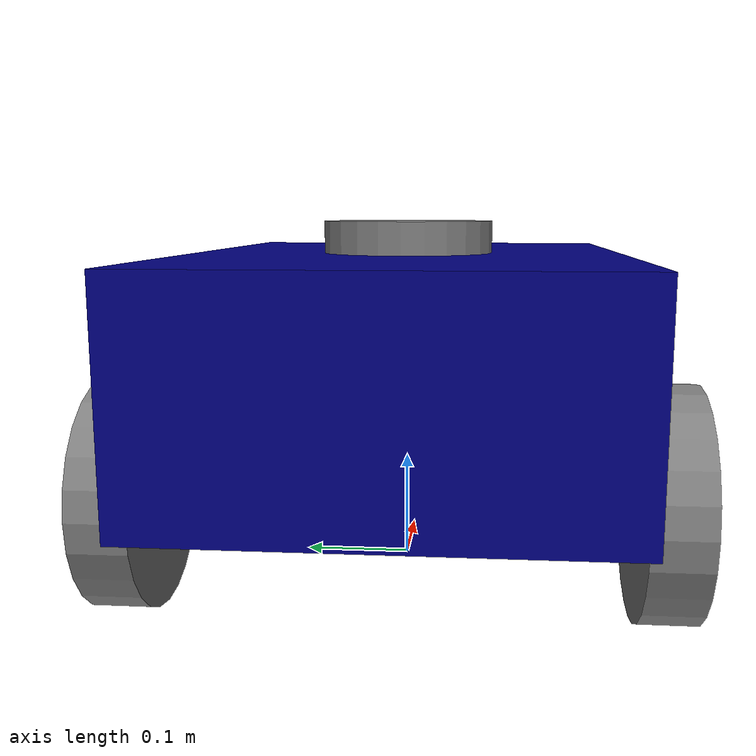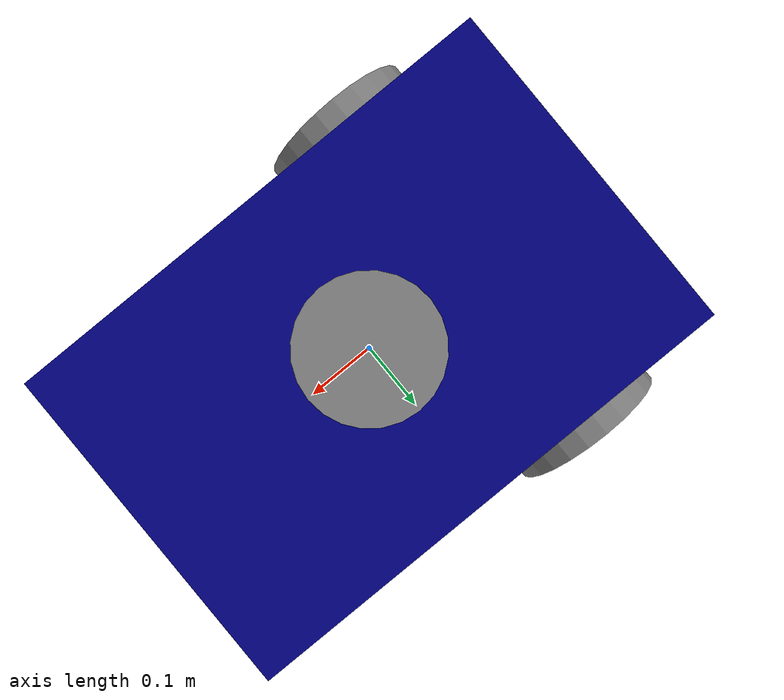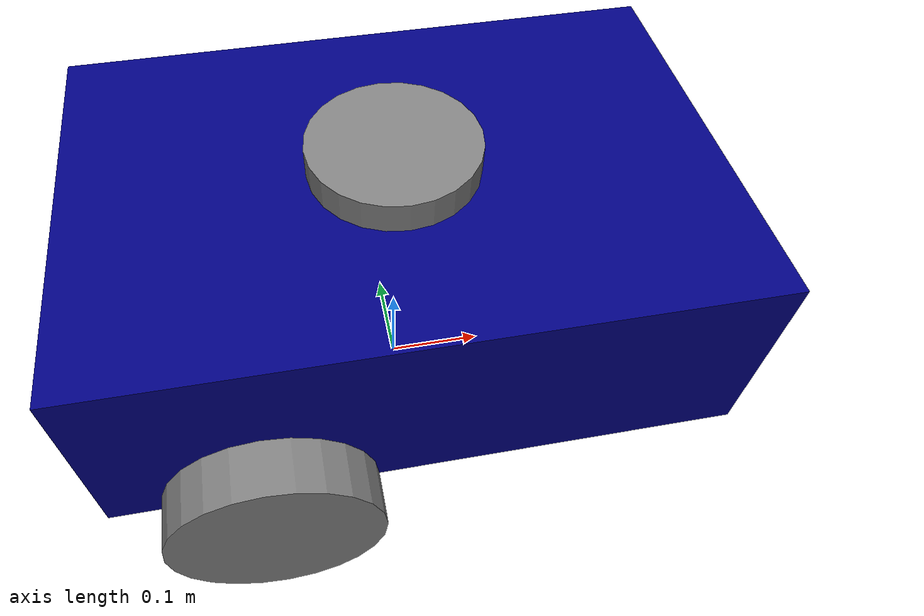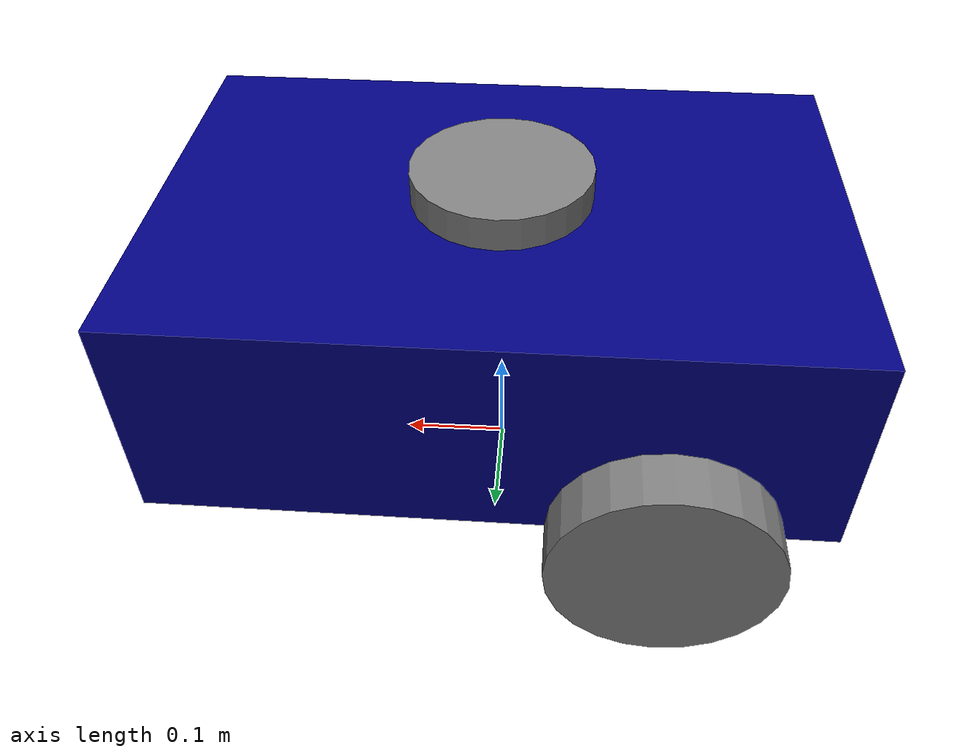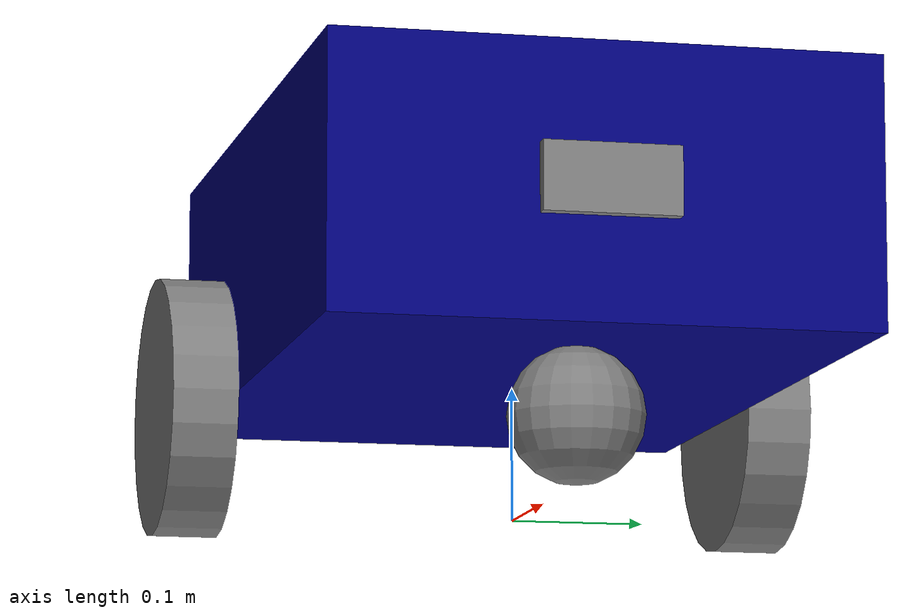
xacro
<?xml version="1.0"?>
<robot name="my_robot" xmlns:xacro="http://www.ros.org/wiki/xacro">

    <xacro:include filename="common_properties.xacro"/>
    <xacro:include filename="mobile_base_gazebo.xacro" />
    <xacro:include filename="mobile_base.xacro" />
    <xacro:include filename="camera.xacro" />
    <xacro:include filename="base_scan.xacro" />
    <xacro:include filename="base_scan_gazebo.xacro"/>

    <joint name="base_scan" type="fixed">
        <parent link="base_link" />
        <child link="scan_link" />
        <origin xyz="0 0 ${base_hight} " rpy="0 0 0"/>
    </joint>

</robot>

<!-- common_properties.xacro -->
<robot xmlns:xacro="http://www.ros.org/wiki/xacro">
    <material name="blue">
        <color rgba="0 0 0.5 1" />
    </material>

    <material name="grey">
        <color rgba="0.5 0.5 0.5 1" />
    </material>

    <material name="light_blue">
        <color rgba="0 0 0.2 1" />
    </material>

    <material name="orange">
        <color rgba="${255/255} ${108/255} ${10/255} 1.0" />
    </material>

    <material name="yellow">
        <color rgba="1 1 0 1" />
    </material>

    <xacro:macro name="box_inertia" params=" m x y z o_xyz o_rpy">
        <inertial>
            <mass value="${m}"/>
            <origin xyz="${o_xyz}" rpy="${o_rpy}" />
            <inertia ixx="${(m/12) * (y*y + z*z)}"  ixy="0" ixz="0"
                     iyy="${(m/12) * (x*x + z*z)}"  iyz="0"
                     izz="${(m/12) * (y*y + x*x)}"/>
        </inertial>
    </xacro:macro>

    <xacro:macro name="cylinder_inertia" params="m r length o_xyz o_rpy">
        <inertial>
            <mass value="${m}"/>
            <origin xyz="${o_xyz}" rpy="${o_rpy}"/>
            <inertia ixx="${(m/12) * (3*(r*r) + (length*length))}"  ixy="0" ixz="0"
                    iyy="${(m/12) * (3*(r*r) + (length*length))}"  iyz="0"
                    izz="${(1/2) * m * (r*r)}"/>
        </inertial>
    </xacro:macro>

    <xacro:macro name="sphere_inertia" params="m r  o_xyz o_rpy">
        <inertial>
            <mass value="${m}"/>
            <origin xyz="${o_xyz}" rpy="${o_rpy}"/>
            <inertia ixx="${(2/5) * m * (r*r)}" ixy="0" ixz="0"
                    iyy="${(2/5) * m * (r*r)}"  iyz="0"
                    izz="${(2/5) * m * (r*r)}"/>
        </inertial>
    </xacro:macro>

</robot>

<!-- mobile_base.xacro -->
<robot xmlns:xacro="http://www.ros.org/wiki/xacro">

    <xacro:property name="base_length" value="0.6" />
    <xacro:property name="base_width" value="0.4" />
    <xacro:property name="wheel_radius" value="0.1" />
    <xacro:property name="wheel_length" value="0.05" />
    <xacro:property name="base_hight" value="0.2" />

    <!-- =============================links=================================-->

    <link name="base_footprint"/>

    <link name="base_link">

        <visual>
            <geometry>
                <box size="${base_length} ${base_width} ${base_hight}" />
            </geometry>
            <origin xyz="0 0 ${wheel_radius}" rpy="0 0 0" />
            <material name="blue" />
        </visual>
        <collision>
            <geometry>
                <box size="${base_length} ${base_width} ${base_hight}" />
            </geometry>
            <origin xyz="0 0 ${wheel_radius}" rpy="0 0 0" />
        </collision>
        <xacro:box_inertia m="5.0" x="${base_length}" y="${base_width}" z="${base_hight}"
                           o_xyz="0 0 ${wheel_radius}" o_rpy="0 0 0"/>
    </link>

    <xacro:macro name="wheel_link" params="prefix">
        <link name="${prefix}_wheel_link">
            <visual>
            <geometry>
                <cylinder radius="${wheel_radius}" length="${wheel_length}" />
            </geometry>
            <origin xyz="0 0 0" rpy="${pi/2.0} 0 0" />
            <material name="grey" />
        </visual>
        <collision>
            <geometry>
                <sphere radius="${wheel_radius}" />
            </geometry>
            <origin xyz="0 0 0" rpy="0 0 0" />
        </collision>
        <xacro:cylinder_inertia m="1" r="${wheel_radius}" length="${wheel_length}"
                                o_xyz="0 0 0" o_rpy="${pi/2.0} 0 0"/>
        </link>
    </xacro:macro>

    <xacro:wheel_link prefix="right"/>
    <xacro:wheel_link prefix="left"/>

    <link name="caster_wheel_link">
        <visual>
            <geometry>
                <sphere radius="${wheel_radius/2}" />
            </geometry>
            <origin xyz="0 0 0" rpy="0 0 0" />
            <material name="grey" />
        </visual>
        <collision>
            <geometry>
                <sphere radius="${wheel_radius/2}" />
            </geometry>
            <origin xyz="0 0 0" rpy="0 0 0" />
        </collision>
        <xacro:sphere_inertia m="0.5" r="${wheel_radius/2}"
                              o_xyz="0 0 0" o_rpy="${pi/2.0} 0 0"/>
    </link>

    <!-- =============================joints=================================-->
    <joint name="base_joint" type="fixed">
        <parent link="base_footprint" />
        <child link="base_link" />
        <origin xyz="0 0 ${wheel_radius}" rpy="0 0 0"/>
    </joint>

    <joint name="base_right_wheel_joint" type="continuous">
        <parent link="base_link" />
        <child link="right_wheel_link" />
        <origin xyz="${-base_length / 4.0} ${-(base_width/2)-(wheel_length/2)} 0" rpy="0 0 0" />
        <axis xyz="0 1 0" />
    </joint>

    <joint name="base_left_wheel_joint" type="continuous">
        <parent link="base_link" />
        <child link="left_wheel_link" />
        <origin xyz="${-base_length / 4.0} ${(base_width/2)+(wheel_length/2)} 0" rpy="0 0 0" />
        <axis xyz="0 1 0" />
    </joint>

    <joint name="base_caster_wheel_joint" type="fixed">
        <parent link="base_link" />
        <child link="caster_wheel_link" />
        <origin xyz="${base_length / 3.0} 0 -${wheel_length}" rpy="0 0 0" />
    </joint>

</robot>

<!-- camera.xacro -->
<robot xmlns:xacro="http://www.ros.org/wiki/xacro">

    <xacro:property name="camera_length" value="0.01" />
    <xacro:property name="camera_width" value="0.1" />
    <xacro:property name="camera_height" value="0.05" />

    <link name="camera_link">
        <visual>
            <geometry>
                <box size="${camera_length} ${camera_width} ${camera_height}" />
            </geometry>
            <origin xyz="${-camera_length/2} 0 0" rpy="0 0 0" />
            <material name="grey" />
        </visual>
        <collision>
            <geometry>
                <box size="${camera_length} ${camera_width} ${camera_height}" />
            </geometry>
            <origin xyz="${-camera_length/2} 0 0" rpy="0 0 0" />
        </collision>
        <xacro:box_inertia m="0.1" x="${camera_length}" y="${camera_width}" z="${camera_height}"
                           o_xyz="${-camera_length/2} 0 0" o_rpy="0 0 0"/>
    </link>

     <joint name="base_camera_joint" type="fixed">
        <parent link="base_link"/>
        <child link="camera_link"/>
        <origin xyz="${(base_length /2.0) + camera_length} 0 ${base_hight/2}" rpy="0 0 0"/>
    </joint>

    <link name="camera_link_optical" />

    <joint name="camera_optical_joint" type="fixed">
        <origin xyz="0 0 0" rpy="${-pi/2} 0 ${-pi/2}"/>
        <parent link="camera_link"/>
        <child link="camera_link_optical"/>
    </joint>

    <gazebo reference="camera_link">
        <sensor name="camera" type="camera">
            <camera>
                <horizontal_fov>1.3962634</horizontal_fov>
                <image>
                    <width>640</width>
                    <height>480</height>
                    <format>R8G8B8</format>
                </image>
                <clip>
                    <near>0.1</near>
                    <far>15</far>
                </clip>
                <noise>
                    <type>gaussian</type>
                    <mean>0.0</mean>
                    <stddev>0.007</stddev>
                </noise>
                <optical_frame_id>camera_link_optical</optical_frame_id>
                <camera_info_topic>camera/camera_info</camera_info_topic>
            </camera>
            <always_on>1</always_on>
            <update_rate>20</update_rate>
            <visualize>true</visualize>
            <topic>camera/image_raw</topic>
        </sensor>
    </gazebo>

</robot>

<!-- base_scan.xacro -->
<robot xmlns:xacro="http://www.ros.org/wiki/xacro">

    <xacro:property name="scan_radius" value="0.08" />
    <xacro:property name="scan_height" value="0.03" />

     <link name="scan_link">
        <visual>
            <geometry>
                <cylinder radius="${scan_radius}" length="${scan_height}" />
            </geometry>
            <origin xyz="0 0 ${scan_height/2}" rpy="0 0 0" />
            <material name="grey" />
        </visual>
        <collision>
            <geometry>
                <sphere radius="${scan_radius}"/>
            </geometry>
            <origin xyz="0 0 0" rpy="0 0 0" />
        </collision>
        <xacro:cylinder_inertia m="0.1" r="${scan_radius}" length="${scan_height}"
                                o_xyz="0 0 0" o_rpy="${pi/2.0} 0 0"/>
    </link>

</robot>
